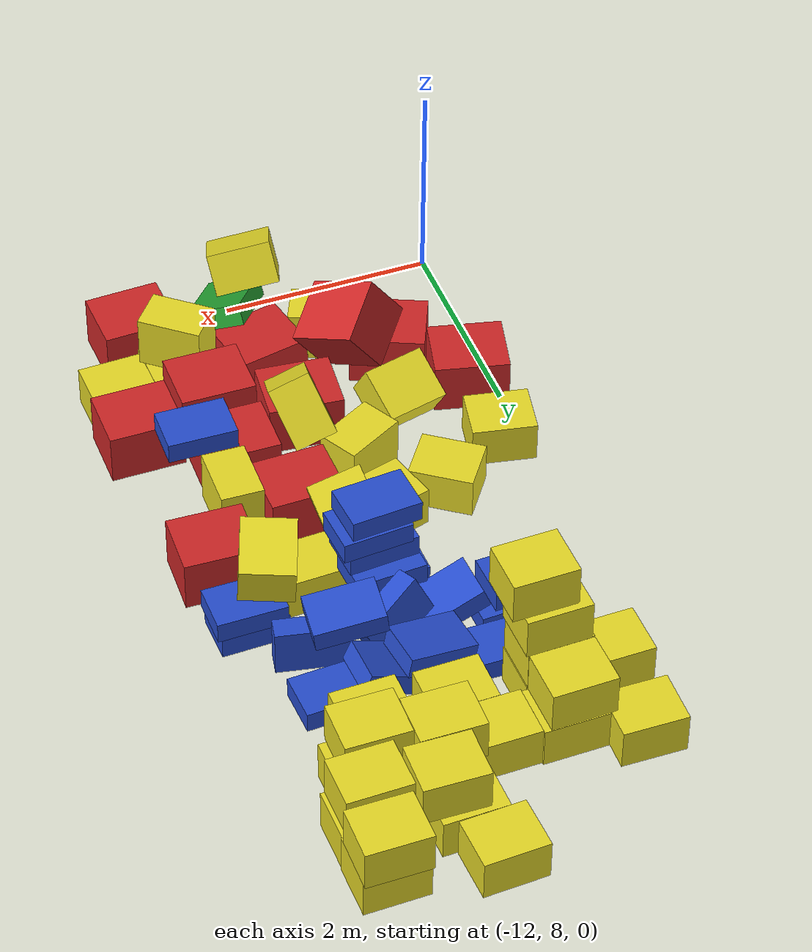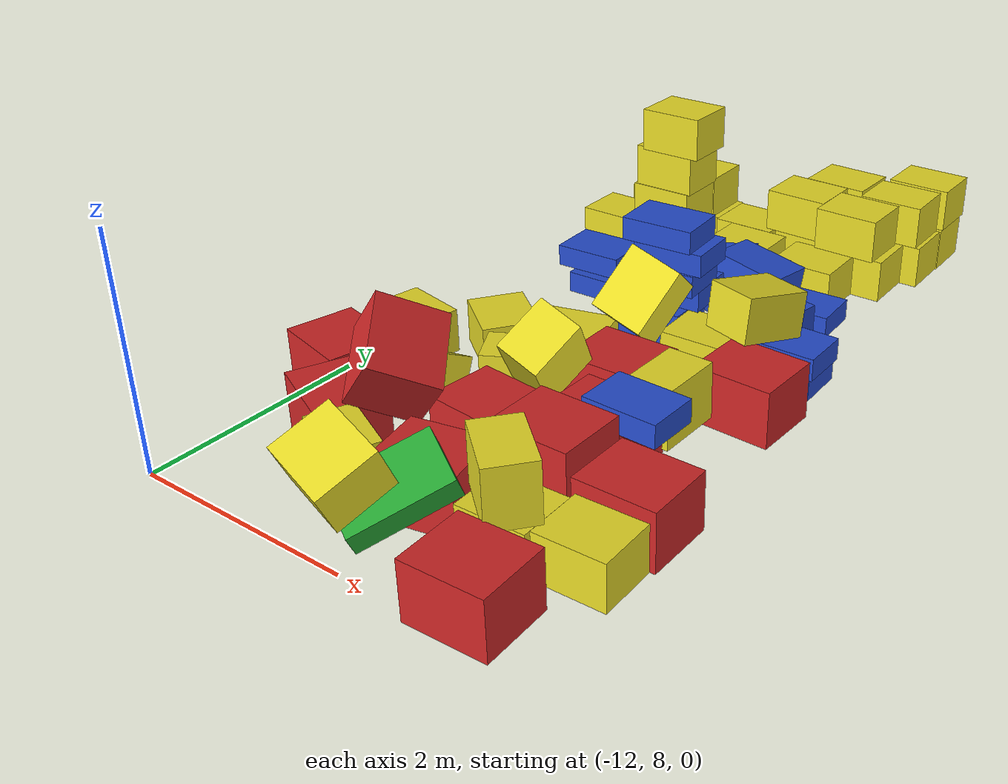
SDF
<sdf version="1.6">
 <world name="default">
  <model name="baggage_A_clone_20">
   <static>0</static>
   <link name="link">
    <collision name="collision"><geometry><box><size>0.7 0.6 0.5</size></box></geometry></collision>
    <visual name="visual">
     <geometry><box><size>0.7 0.6 0.5</size></box></geometry>
     <material>
      <script><uri>file://media/materials/scripts/gazebo.material</uri><name>Gazebo/Red</name></script>
     </material>
    </visual>
    <inertial>
     <inertia><ixx>1</ixx><ixy>0</ixy><ixz>0</ixz><iyy>1</iyy><iyz>0</iyz><izz>1</izz></inertia>
     <mass>1</mass>
    </inertial>
   </link>
   <pose>-8.9939 8.22465 0.249181 0.001268 6.1e-05 0.037154</pose>
  </model>
  <model name="baggage_A_clone_21">
   <static>0</static>
   <link name="link">
    <collision name="collision"><geometry><box><size>0.7 0.6 0.5</size></box></geometry></collision>
    <visual name="visual">
     <geometry><box><size>0.7 0.6 0.5</size></box></geometry>
     <material>
      <script><uri>file://media/materials/scripts/gazebo.material</uri><name>Gazebo/Red</name></script>
     </material>
    </visual>
    <inertial>
     <inertia><ixx>1</ixx><ixy>0</ixy><ixz>0</ixz><iyy>1</iyy><iyz>0</iyz><izz>1</izz></inertia>
     <mass>1</mass>
    </inertial>
   </link>
   <pose>-10.723 9.3807 0.785879 -2.65801 -0.434698 2.19369</pose>
  </model>
  <model name="baggage_A_clone_22">
   <static>0</static>
   <link name="link">
    <collision name="collision"><geometry><box><size>0.7 0.6 0.5</size></box></geometry></collision>
    <visual name="visual">
     <geometry><box><size>0.7 0.6 0.5</size></box></geometry>
     <material>
      <script><uri>file://media/materials/scripts/gazebo.material</uri><name>Gazebo/Red</name></script>
     </material>
    </visual>
    <inertial>
     <inertia><ixx>1</ixx><ixy>0</ixy><ixz>0</ixz><iyy>1</iyy><iyz>0</iyz><izz>1</izz></inertia>
     <mass>1</mass>
    </inertial>
   </link>
   <pose>-9.3741 10.0992 0.252939 0.002003 0.003724 -0.018318</pose>
  </model>
  <model name="baggage_A_clone_23">
   <static>0</static>
   <link name="link">
    <collision name="collision"><geometry><box><size>0.7 0.6 0.5</size></box></geometry></collision>
    <visual name="visual">
     <geometry><box><size>0.7 0.6 0.5</size></box></geometry>
     <material>
      <script><uri>file://media/materials/scripts/gazebo.material</uri><name>Gazebo/Red</name></script>
     </material>
    </visual>
    <inertial>
     <inertia><ixx>1</ixx><ixy>0</ixy><ixz>0</ixz><iyy>1</iyy><iyz>0</iyz><izz>1</izz></inertia>
     <mass>1</mass>
    </inertial>
   </link>
   <pose>-10.1281 9.7162 0.250001 4e-06 1e-06 -0.097675</pose>
  </model>
  <model name="baggage_A_clone_36">
   <static>0</static>
   <link name="link">
    <collision name="collision"><geometry><box><size>0.7 0.6 0.5</size></box></geometry></collision>
    <visual name="visual">
     <geometry><box><size>0.7 0.6 0.5</size></box></geometry>
     <material>
      <script><uri>file://media/materials/scripts/gazebo.material</uri><name>Gazebo/Red</name></script>
     </material>
    </visual>
    <inertial>
     <inertia><ixx>1</ixx><ixy>0</ixy><ixz>0</ixz><iyy>1</iyy><iyz>0</iyz><izz>1</izz></inertia>
     <mass>1</mass>
    </inertial>
   </link>
   <pose>-8.78308 11.2744 0.249697 -5e-05 -4.8e-05 -0.037055</pose>
  </model>
  <model name="baggage_A_clone_37">
   <static>0</static>
   <link name="link">
    <collision name="collision"><geometry><box><size>0.7 0.6 0.5</size></box></geometry></collision>
    <visual name="visual">
     <geometry><box><size>0.7 0.6 0.5</size></box></geometry>
     <material>
      <script><uri>file://media/materials/scripts/gazebo.material</uri><name>Gazebo/Red</name></script>
     </material>
    </visual>
    <inertial>
     <inertia><ixx>1</ixx><ixy>0</ixy><ixz>0</ixz><iyy>1</iyy><iyz>0</iyz><izz>1</izz></inertia>
     <mass>1</mass>
    </inertial>
   </link>
   <pose>-9.72185 10.831 0.251445 -0.00349 -0.001167 0.01839</pose>
  </model>
  <model name="baggage_A_clone_38">
   <static>0</static>
   <link name="link">
    <collision name="collision"><geometry><box><size>0.7 0.6 0.5</size></box></geometry></collision>
    <visual name="visual">
     <geometry><box><size>0.7 0.6 0.5</size></box></geometry>
     <material>
      <script><uri>file://media/materials/scripts/gazebo.material</uri><name>Gazebo/Red</name></script>
     </material>
    </visual>
    <inertial>
     <inertia><ixx>1</ixx><ixy>0</ixy><ixz>0</ixz><iyy>1</iyy><iyz>0</iyz><izz>1</izz></inertia>
     <mass>1</mass>
    </inertial>
   </link>
   <pose>-11.7703 9.75736 0.249999 1e-06 3e-06 -0.23456</pose>
  </model>
  <model name="baggage_B_clone_16">
   <static>0</static>
   <link name="link">
    <collision name="collision"><geometry><box><size>0.65 0.45 0.2</size></box></geometry></collision>
    <visual name="visual">
     <geometry><box><size>0.65 0.45 0.2</size></box></geometry>
     <material>
      <script><uri>file://media/materials/scripts/gazebo.material</uri><name>Gazebo/Blue</name></script>
     </material>
    </visual>
    <inertial>
     <inertia><ixx>1</ixx><ixy>0</ixy><ixz>0</ixz><iyy>1</iyy><iyz>0</iyz><izz>1</izz></inertia>
     <mass>1</mass>
    </inertial>
   </link>
   <pose>-9.25046 13.0399 0.099844 -1.5e-05 -1.7e-05 0.049353</pose>
  </model>
  <model name="baggage_B_clone_20">
   <static>0</static>
   <link name="link">
    <collision name="collision"><geometry><box><size>0.65 0.45 0.2</size></box></geometry></collision>
    <visual name="visual">
     <geometry><box><size>0.65 0.45 0.2</size></box></geometry>
     <material>
      <script><uri>file://media/materials/scripts/gazebo.material</uri><name>Gazebo/Blue</name></script>
     </material>
    </visual>
    <inertial>
     <inertia><ixx>1</ixx><ixy>0</ixy><ixz>0</ixz><iyy>1</iyy><iyz>0</iyz><izz>1</izz></inertia>
     <mass>1</mass>
    </inertial>
   </link>
   <pose>-9.7711 13.0268 0.222312 0.000105 -0.415489 0.049137</pose>
  </model>
  <model name="baggage_B_clone_21">
   <static>0</static>
   <link name="link">
    <collision name="collision"><geometry><box><size>0.65 0.45 0.2</size></box></geometry></collision>
    <visual name="visual">
     <geometry><box><size>0.65 0.45 0.2</size></box></geometry>
     <material>
      <script><uri>file://media/materials/scripts/gazebo.material</uri><name>Gazebo/Blue</name></script>
     </material>
    </visual>
    <inertial>
     <inertia><ixx>1</ixx><ixy>0</ixy><ixz>0</ixz><iyy>1</iyy><iyz>0</iyz><izz>1</izz></inertia>
     <mass>1</mass>
    </inertial>
   </link>
   <pose>-10.1528 13.0119 0.357664 1.5e-05 -0.185455 0.125951</pose>
  </model>
  <model name="baggage_B_clone_22">
   <static>0</static>
   <link name="link">
    <collision name="collision"><geometry><box><size>0.65 0.45 0.2</size></box></geometry></collision>
    <visual name="visual">
     <geometry><box><size>0.65 0.45 0.2</size></box></geometry>
     <material>
      <script><uri>file://media/materials/scripts/gazebo.material</uri><name>Gazebo/Blue</name></script>
     </material>
    </visual>
    <inertial>
     <inertia><ixx>1</ixx><ixy>0</ixy><ixz>0</ixz><iyy>1</iyy><iyz>0</iyz><izz>1</izz></inertia>
     <mass>1</mass>
    </inertial>
   </link>
   <pose>-10.6127 13.0352 0.099462 6e-06 6.4e-05 -0.003617</pose>
  </model>
  <model name="baggage_B_clone_23">
   <static>0</static>
   <link name="link">
    <collision name="collision"><geometry><box><size>0.65 0.45 0.2</size></box></geometry></collision>
    <visual name="visual">
     <geometry><box><size>0.65 0.45 0.2</size></box></geometry>
     <material>
      <script><uri>file://media/materials/scripts/gazebo.material</uri><name>Gazebo/Blue</name></script>
     </material>
    </visual>
    <inertial>
     <inertia><ixx>1</ixx><ixy>0</ixy><ixz>0</ixz><iyy>1</iyy><iyz>0</iyz><izz>1</izz></inertia>
     <mass>1</mass>
    </inertial>
   </link>
   <pose>-11.0485 12.5211 0.090977 -0.000836 0.000896 0.039463</pose>
  </model>
  <model name="baggage_B_clone_24">
   <static>0</static>
   <link name="link">
    <collision name="collision"><geometry><box><size>0.65 0.45 0.2</size></box></geometry></collision>
    <visual name="visual">
     <geometry><box><size>0.65 0.45 0.2</size></box></geometry>
     <material>
      <script><uri>file://media/materials/scripts/gazebo.material</uri><name>Gazebo/Blue</name></script>
     </material>
    </visual>
    <inertial>
     <inertia><ixx>1</ixx><ixy>0</ixy><ixz>0</ixz><iyy>1</iyy><iyz>0</iyz><izz>1</izz></inertia>
     <mass>1</mass>
    </inertial>
   </link>
   <pose>-11.168 12.5166 0.346873 0.005702 -0.01162 0.041514</pose>
  </model>
  <model name="baggage_B_clone_25">
   <static>0</static>
   <link name="link">
    <collision name="collision"><geometry><box><size>0.65 0.45 0.2</size></box></geometry></collision>
    <visual name="visual">
     <geometry><box><size>0.65 0.45 0.2</size></box></geometry>
     <material>
      <script><uri>file://media/materials/scripts/gazebo.material</uri><name>Gazebo/Blue</name></script>
     </material>
    </visual>
    <inertial>
     <inertia><ixx>1</ixx><ixy>0</ixy><ixz>0</ixz><iyy>1</iyy><iyz>0</iyz><izz>1</izz></inertia>
     <mass>1</mass>
    </inertial>
   </link>
   <pose>-10.5022 12.4446 0.212184 -7e-06 0.377408 0.049596</pose>
  </model>
  <model name="baggage_B_clone_26">
   <static>0</static>
   <link name="link">
    <collision name="collision"><geometry><box><size>0.65 0.45 0.2</size></box></geometry></collision>
    <visual name="visual">
     <geometry><box><size>0.65 0.45 0.2</size></box></geometry>
     <material>
      <script><uri>file://media/materials/scripts/gazebo.material</uri><name>Gazebo/Blue</name></script>
     </material>
    </visual>
    <inertial>
     <inertia><ixx>1</ixx><ixy>0</ixy><ixz>0</ixz><iyy>1</iyy><iyz>0</iyz><izz>1</izz></inertia>
     <mass>1</mass>
    </inertial>
   </link>
   <pose>-10.1221 11.9904 0.099999 -2e-06 -3e-06 0.022156</pose>
  </model>
  <model name="baggage_B_clone_27">
   <static>0</static>
   <link name="link">
    <collision name="collision"><geometry><box><size>0.65 0.45 0.2</size></box></geometry></collision>
    <visual name="visual">
     <geometry><box><size>0.65 0.45 0.2</size></box></geometry>
     <material>
      <script><uri>file://media/materials/scripts/gazebo.material</uri><name>Gazebo/Blue</name></script>
     </material>
    </visual>
    <inertial>
     <inertia><ixx>1</ixx><ixy>0</ixy><ixz>0</ixz><iyy>1</iyy><iyz>0</iyz><izz>1</izz></inertia>
     <mass>1</mass>
    </inertial>
   </link>
   <pose>-10.0434 11.9814 1.10029 -0.000132 -0.000214 0.077197</pose>
  </model>
  <model name="baggage_B_clone_28">
   <static>0</static>
   <link name="link">
    <collision name="collision"><geometry><box><size>0.65 0.45 0.2</size></box></geometry></collision>
    <visual name="visual">
     <geometry><box><size>0.65 0.45 0.2</size></box></geometry>
     <material>
      <script><uri>file://media/materials/scripts/gazebo.material</uri><name>Gazebo/Blue</name></script>
     </material>
    </visual>
    <inertial>
     <inertia><ixx>1</ixx><ixy>0</ixy><ixz>0</ixz><iyy>1</iyy><iyz>0</iyz><izz>1</izz></inertia>
     <mass>1</mass>
    </inertial>
   </link>
   <pose>-10.126 11.9814 0.299998 -5e-06 -1e-06 0.023405</pose>
  </model>
  <model name="baggage_B_clone_29">
   <static>0</static>
   <link name="link">
    <collision name="collision"><geometry><box><size>0.65 0.45 0.2</size></box></geometry></collision>
    <visual name="visual">
     <geometry><box><size>0.65 0.45 0.2</size></box></geometry>
     <material>
      <script><uri>file://media/materials/scripts/gazebo.material</uri><name>Gazebo/Blue</name></script>
     </material>
    </visual>
    <inertial>
     <inertia><ixx>1</ixx><ixy>0</ixy><ixz>0</ixz><iyy>1</iyy><iyz>0</iyz><izz>1</izz></inertia>
     <mass>1</mass>
    </inertial>
   </link>
   <pose>-10.035 12.1381 0.500093 -0.000235 -0.000744 0.058856</pose>
  </model>
  <model name="baggage_B_clone_30">
   <static>0</static>
   <link name="link">
    <collision name="collision"><geometry><box><size>0.65 0.45 0.2</size></box></geometry></collision>
    <visual name="visual">
     <geometry><box><size>0.65 0.45 0.2</size></box></geometry>
     <material>
      <script><uri>file://media/materials/scripts/gazebo.material</uri><name>Gazebo/Blue</name></script>
     </material>
    </visual>
    <inertial>
     <inertia><ixx>1</ixx><ixy>0</ixy><ixz>0</ixz><iyy>1</iyy><iyz>0</iyz><izz>1</izz></inertia>
     <mass>1</mass>
    </inertial>
   </link>
   <pose>-10.0145 11.9869 0.700123 -0.000157 -0.00074 0.074672</pose>
  </model>
  <model name="baggage_B_clone_31">
   <static>0</static>
   <link name="link">
    <collision name="collision"><geometry><box><size>0.65 0.45 0.2</size></box></geometry></collision>
    <visual name="visual">
     <geometry><box><size>0.65 0.45 0.2</size></box></geometry>
     <material>
      <script><uri>file://media/materials/scripts/gazebo.material</uri><name>Gazebo/Blue</name></script>
     </material>
    </visual>
    <inertial>
     <inertia><ixx>1</ixx><ixy>0</ixy><ixz>0</ixz><iyy>1</iyy><iyz>0</iyz><izz>1</izz></inertia>
     <mass>1</mass>
    </inertial>
   </link>
   <pose>-9.95195 12.0157 0.900299 -0.000156 -0.000286 0.072007</pose>
  </model>
  <model name="baggage_B_clone_32">
   <static>0</static>
   <link name="link">
    <collision name="collision"><geometry><box><size>0.65 0.45 0.2</size></box></geometry></collision>
    <visual name="visual">
     <geometry><box><size>0.65 0.45 0.2</size></box></geometry>
     <material>
      <script><uri>file://media/materials/scripts/gazebo.material</uri><name>Gazebo/Blue</name></script>
     </material>
    </visual>
    <inertial>
     <inertia><ixx>1</ixx><ixy>0</ixy><ixz>0</ixz><iyy>1</iyy><iyz>0</iyz><izz>1</izz></inertia>
     <mass>1</mass>
    </inertial>
   </link>
   <pose>-9.40368 9.47511 0.100606 0.000927 0.000705 -0.377011</pose>
  </model>
  <model name="baggage_B_clone_33">
   <static>0</static>
   <link name="link">
    <collision name="collision"><geometry><box><size>0.65 0.45 0.2</size></box></geometry></collision>
    <visual name="visual">
     <geometry><box><size>0.65 0.45 0.2</size></box></geometry>
     <material>
      <script><uri>file://media/materials/scripts/gazebo.material</uri><name>Gazebo/Blue</name></script>
     </material>
    </visual>
    <inertial>
     <inertia><ixx>1</ixx><ixy>0</ixy><ixz>0</ixz><iyy>1</iyy><iyz>0</iyz><izz>1</izz></inertia>
     <mass>1</mass>
    </inertial>
   </link>
   <pose>-9.96611 12.5784 0.342142 1.72866 0.383061 0.45533</pose>
  </model>
  <model name="baggage_B_clone_34">
   <static>0</static>
   <link name="link">
    <collision name="collision"><geometry><box><size>0.65 0.45 0.2</size></box></geometry></collision>
    <visual name="visual">
     <geometry><box><size>0.65 0.45 0.2</size></box></geometry>
     <material>
      <script><uri>file://media/materials/scripts/gazebo.material</uri><name>Gazebo/Blue</name></script>
     </material>
    </visual>
    <inertial>
     <inertia><ixx>1</ixx><ixy>0</ixy><ixz>0</ixz><iyy>1</iyy><iyz>0</iyz><izz>1</izz></inertia>
     <mass>1</mass>
    </inertial>
   </link>
   <pose>-9.51392 12.6318 0.59185 -0.067016 0.127095 -0.108396</pose>
  </model>
  <model name="baggage_B_clone_35">
   <static>0</static>
   <link name="link">
    <collision name="collision"><geometry><box><size>0.65 0.45 0.2</size></box></geometry></collision>
    <visual name="visual">
     <geometry><box><size>0.65 0.45 0.2</size></box></geometry>
     <material>
      <script><uri>file://media/materials/scripts/gazebo.material</uri><name>Gazebo/Blue</name></script>
     </material>
    </visual>
    <inertial>
     <inertia><ixx>1</ixx><ixy>0</ixy><ixz>0</ixz><iyy>1</iyy><iyz>0</iyz><izz>1</izz></inertia>
     <mass>1</mass>
    </inertial>
   </link>
   <pose>-9.24122 12.5226 0.224977 1.5708 -1e-06 -0.199324</pose>
  </model>
  <model name="baggage_B_clone_41">
   <static>0</static>
   <link name="link">
    <collision name="collision"><geometry><box><size>0.65 0.45 0.2</size></box></geometry></collision>
    <visual name="visual">
     <geometry><box><size>0.65 0.45 0.2</size></box></geometry>
     <material>
      <script><uri>file://media/materials/scripts/gazebo.material</uri><name>Gazebo/Blue</name></script>
     </material>
    </visual>
    <inertial>
     <inertia><ixx>1</ixx><ixy>0</ixy><ixz>0</ixz><iyy>1</iyy><iyz>0</iyz><izz>1</izz></inertia>
     <mass>1</mass>
    </inertial>
   </link>
   <pose>-8.85566 11.9961 0.1 0 -0 0.023504</pose>
  </model>
  <model name="baggage_B_clone_42">
   <static>0</static>
   <link name="link">
    <collision name="collision"><geometry><box><size>0.65 0.45 0.2</size></box></geometry></collision>
    <visual name="visual">
     <geometry><box><size>0.65 0.45 0.2</size></box></geometry>
     <material>
      <script><uri>file://media/materials/scripts/gazebo.material</uri><name>Gazebo/Blue</name></script>
     </material>
    </visual>
    <inertial>
     <inertia><ixx>1</ixx><ixy>0</ixy><ixz>0</ixz><iyy>1</iyy><iyz>0</iyz><izz>1</izz></inertia>
     <mass>1</mass>
    </inertial>
   </link>
   <pose>-8.82535 11.9975 0.299588 -2e-05 -0.000456 0.003886</pose>
  </model>
  <model name="baggage_B_clone_44">
   <static>0</static>
   <link name="link">
    <collision name="collision"><geometry><box><size>0.65 0.45 0.2</size></box></geometry></collision>
    <visual name="visual">
     <geometry><box><size>0.65 0.45 0.2</size></box></geometry>
     <material>
      <script><uri>file://media/materials/scripts/gazebo.material</uri><name>Gazebo/Blue</name></script>
     </material>
    </visual>
    <inertial>
     <inertia><ixx>1</ixx><ixy>0</ixy><ixz>0</ixz><iyy>1</iyy><iyz>0</iyz><izz>1</izz></inertia>
     <mass>1</mass>
    </inertial>
   </link>
   <pose>-9.03203 10.0629 0.602401 0.001383 0.001693 -0.023795</pose>
  </model>
  <model name="baggage_A_clone_43">
   <static>0</static>
   <link name="link">
    <collision name="collision"><geometry><box><size>0.7 0.6 0.5</size></box></geometry></collision>
    <visual name="visual">
     <geometry><box><size>0.7 0.6 0.5</size></box></geometry>
     <material>
      <script><uri>file://media/materials/scripts/gazebo.material</uri><name>Gazebo/Red</name></script>
     </material>
    </visual>
    <inertial>
     <inertia><ixx>1</ixx><ixy>0</ixy><ixz>0</ixz><iyy>1</iyy><iyz>0</iyz><izz>1</izz></inertia>
     <mass>1</mass>
    </inertial>
   </link>
   <pose>-8.64007 9.52962 0.250004 0.000114 -5.9e-05 0.001173</pose>
  </model>
  <model name="baggage_A_clone_44">
   <static>0</static>
   <link name="link">
    <collision name="collision"><geometry><box><size>0.7 0.6 0.5</size></box></geometry></collision>
    <visual name="visual">
     <geometry><box><size>0.7 0.6 0.5</size></box></geometry>
     <material>
      <script><uri>file://media/materials/scripts/gazebo.material</uri><name>Gazebo/Red</name></script>
     </material>
    </visual>
    <inertial>
     <inertia><ixx>1</ixx><ixy>0</ixy><ixz>0</ixz><iyy>1</iyy><iyz>0</iyz><izz>1</izz></inertia>
     <mass>1</mass>
    </inertial>
   </link>
   <pose>-9.3438 9.49567 0.451551 -0.000504 -0.001005 -0.010672</pose>
  </model>
  <model name="baggage_A_clone_45">
   <static>0</static>
   <link name="link">
    <collision name="collision"><geometry><box><size>0.7 0.6 0.5</size></box></geometry></collision>
    <visual name="visual">
     <geometry><box><size>0.7 0.6 0.5</size></box></geometry>
     <material>
      <script><uri>file://media/materials/scripts/gazebo.material</uri><name>Gazebo/Red</name></script>
     </material>
    </visual>
    <inertial>
     <inertia><ixx>1</ixx><ixy>0</ixy><ixz>0</ixz><iyy>1</iyy><iyz>0</iyz><izz>1</izz></inertia>
     <mass>1</mass>
    </inertial>
   </link>
   <pose>-11.2031 9.18107 0.24996 -5e-06 5e-06 -0.421757</pose>
  </model>
  <model name="baggage_C_clone_17">
   <static>0</static>
   <link name="link">
    <collision name="collision"><geometry><box><size>0.6 0.5 0.4</size></box></geometry></collision>
    <visual name="visual">
     <geometry><box><size>0.6 0.5 0.4</size></box></geometry>
     <material>
      <script><uri>file://media/materials/scripts/gazebo.material</uri><name>Gazebo/Yellow</name></script>
     </material>
    </visual>
    <inertial>
     <inertia><ixx>1</ixx><ixy>0</ixy><ixz>0</ixz><iyy>1</iyy><iyz>0</iyz><izz>1</izz></inertia>
     <mass>1</mass>
    </inertial>
   </link>
   <pose>-9.03858 14.5232 0.600195 -4.7e-05 -4e-06 0.014866</pose>
  </model>
  <model name="baggage_C_clone_18">
   <static>0</static>
   <link name="link">
    <collision name="collision"><geometry><box><size>0.6 0.5 0.4</size></box></geometry></collision>
    <visual name="visual">
     <geometry><box><size>0.6 0.5 0.4</size></box></geometry>
     <material>
      <script><uri>file://media/materials/scripts/gazebo.material</uri><name>Gazebo/Yellow</name></script>
     </material>
    </visual>
    <inertial>
     <inertia><ixx>1</ixx><ixy>0</ixy><ixz>0</ixz><iyy>1</iyy><iyz>0</iyz><izz>1</izz></inertia>
     <mass>1</mass>
    </inertial>
   </link>
   <pose>-8.9966 15.0812 0.6 0 -0 0.000513</pose>
  </model>
  <model name="baggage_C_clone_19">
   <static>0</static>
   <link name="link">
    <collision name="collision"><geometry><box><size>0.6 0.5 0.4</size></box></geometry></collision>
    <visual name="visual">
     <geometry><box><size>0.6 0.5 0.4</size></box></geometry>
     <material>
      <script><uri>file://media/materials/scripts/gazebo.material</uri><name>Gazebo/Yellow</name></script>
     </material>
    </visual>
    <inertial>
     <inertia><ixx>1</ixx><ixy>0</ixy><ixz>0</ixz><iyy>1</iyy><iyz>0</iyz><izz>1</izz></inertia>
     <mass>1</mass>
    </inertial>
   </link>
   <pose>-8.9998 14.5254 0.199974 -3.7e-05 -0 0.016113</pose>
  </model>
  <model name="baggage_C_clone_21">
   <static>0</static>
   <link name="link">
    <collision name="collision"><geometry><box><size>0.6 0.5 0.4</size></box></geometry></collision>
    <visual name="visual">
     <geometry><box><size>0.6 0.5 0.4</size></box></geometry>
     <material>
      <script><uri>file://media/materials/scripts/gazebo.material</uri><name>Gazebo/Yellow</name></script>
     </material>
    </visual>
    <inertial>
     <inertia><ixx>1</ixx><ixy>0</ixy><ixz>0</ixz><iyy>1</iyy><iyz>0</iyz><izz>1</izz></inertia>
     <mass>1</mass>
    </inertial>
   </link>
   <pose>-9.43084 13.5183 0.199918 -7.6e-05 1.7e-05 0.016396</pose>
  </model>
  <model name="baggage_C_clone_22">
   <static>0</static>
   <link name="link">
    <collision name="collision"><geometry><box><size>0.6 0.5 0.4</size></box></geometry></collision>
    <visual name="visual">
     <geometry><box><size>0.6 0.5 0.4</size></box></geometry>
     <material>
      <script><uri>file://media/materials/scripts/gazebo.material</uri><name>Gazebo/Yellow</name></script>
     </material>
    </visual>
    <inertial>
     <inertia><ixx>1</ixx><ixy>0</ixy><ixz>0</ixz><iyy>1</iyy><iyz>0</iyz><izz>1</izz></inertia>
     <mass>1</mass>
    </inertial>
   </link>
   <pose>-10.1736 13.5433 0.199999 2e-06 -1e-06 0.010649</pose>
  </model>
  <model name="baggage_C_clone_23">
   <static>0</static>
   <link name="link">
    <collision name="collision"><geometry><box><size>0.6 0.5 0.4</size></box></geometry></collision>
    <visual name="visual">
     <geometry><box><size>0.6 0.5 0.4</size></box></geometry>
     <material>
      <script><uri>file://media/materials/scripts/gazebo.material</uri><name>Gazebo/Yellow</name></script>
     </material>
    </visual>
    <inertial>
     <inertia><ixx>1</ixx><ixy>0</ixy><ixz>0</ixz><iyy>1</iyy><iyz>0</iyz><izz>1</izz></inertia>
     <mass>1</mass>
    </inertial>
   </link>
   <pose>-10.1174 8.16935 0.731183 0.426242 0.201924 -0.221704</pose>
  </model>
  <model name="baggage_C_clone_24">
   <static>0</static>
   <link name="link">
    <collision name="collision"><geometry><box><size>0.6 0.5 0.4</size></box></geometry></collision>
    <visual name="visual">
     <geometry><box><size>0.6 0.5 0.4</size></box></geometry>
     <material>
      <script><uri>file://media/materials/scripts/gazebo.material</uri><name>Gazebo/Yellow</name></script>
     </material>
    </visual>
    <inertial>
     <inertia><ixx>1</ixx><ixy>0</ixy><ixz>0</ixz><iyy>1</iyy><iyz>0</iyz><izz>1</izz></inertia>
     <mass>1</mass>
    </inertial>
   </link>
   <pose>-9.48099 11.7276 0.198462 3.14132 0.000154 0.03837</pose>
  </model>
  <model name="baggage_C_clone_25">
   <static>0</static>
   <link name="link">
    <collision name="collision"><geometry><box><size>0.6 0.5 0.4</size></box></geometry></collision>
    <visual name="visual">
     <geometry><box><size>0.6 0.5 0.4</size></box></geometry>
     <material>
      <script><uri>file://media/materials/scripts/gazebo.material</uri><name>Gazebo/Yellow</name></script>
     </material>
    </visual>
    <inertial>
     <inertia><ixx>1</ixx><ixy>0</ixy><ixz>0</ixz><iyy>1</iyy><iyz>0</iyz><izz>1</izz></inertia>
     <mass>1</mass>
    </inertial>
   </link>
   <pose>-9.16262 10.6843 0.343191 1.55956 -0.001796 1.55046</pose>
  </model>
  <model name="baggage_C_clone_26">
   <static>0</static>
   <link name="link">
    <collision name="collision"><geometry><box><size>0.6 0.5 0.4</size></box></geometry></collision>
    <visual name="visual">
     <geometry><box><size>0.6 0.5 0.4</size></box></geometry>
     <material>
      <script><uri>file://media/materials/scripts/gazebo.material</uri><name>Gazebo/Yellow</name></script>
     </material>
    </visual>
    <inertial>
     <inertia><ixx>1</ixx><ixy>0</ixy><ixz>0</ixz><iyy>1</iyy><iyz>0</iyz><izz>1</izz></inertia>
     <mass>1</mass>
    </inertial>
   </link>
   <pose>-9.66964 14.6267 0.599978 -7.9e-05 7e-06 -0.020996</pose>
  </model>
  <model name="baggage_C_clone_27">
   <static>0</static>
   <link name="link">
    <collision name="collision"><geometry><box><size>0.6 0.5 0.4</size></box></geometry></collision>
    <visual name="visual">
     <geometry><box><size>0.6 0.5 0.4</size></box></geometry>
     <material>
      <script><uri>file://media/materials/scripts/gazebo.material</uri><name>Gazebo/Yellow</name></script>
     </material>
    </visual>
    <inertial>
     <inertia><ixx>1</ixx><ixy>0</ixy><ixz>0</ixz><iyy>1</iyy><iyz>0</iyz><izz>1</izz></inertia>
     <mass>1</mass>
    </inertial>
   </link>
   <pose>-9.95902 15.1866 0.199989 1e-06 2e-06 0.048</pose>
  </model>
  <model name="baggage_C_clone_28">
   <static>0</static>
   <link name="link">
    <collision name="collision"><geometry><box><size>0.6 0.5 0.4</size></box></geometry></collision>
    <visual name="visual">
     <geometry><box><size>0.6 0.5 0.4</size></box></geometry>
     <material>
      <script><uri>file://media/materials/scripts/gazebo.material</uri><name>Gazebo/Yellow</name></script>
     </material>
    </visual>
    <inertial>
     <inertia><ixx>1</ixx><ixy>0</ixy><ixz>0</ixz><iyy>1</iyy><iyz>0</iyz><izz>1</izz></inertia>
     <mass>1</mass>
    </inertial>
   </link>
   <pose>-9.81004 14.6862 0.199961 -2e-06 0 0.024409</pose>
  </model>
  <model name="baggage_C_clone_29">
   <static>0</static>
   <link name="link">
    <collision name="collision"><geometry><box><size>0.6 0.5 0.4</size></box></geometry></collision>
    <visual name="visual">
     <geometry><box><size>0.6 0.5 0.4</size></box></geometry>
     <material>
      <script><uri>file://media/materials/scripts/gazebo.material</uri><name>Gazebo/Yellow</name></script>
     </material>
    </visual>
    <inertial>
     <inertia><ixx>1</ixx><ixy>0</ixy><ixz>0</ixz><iyy>1</iyy><iyz>0</iyz><izz>1</izz></inertia>
     <mass>1</mass>
    </inertial>
   </link>
   <pose>-9.22994 13.9846 0.600215 -3.6e-05 -4e-06 -0.004673</pose>
  </model>
  <model name="baggage_C_clone_30">
   <static>0</static>
   <link name="link">
    <collision name="collision"><geometry><box><size>0.6 0.5 0.4</size></box></geometry></collision>
    <visual name="visual">
     <geometry><box><size>0.6 0.5 0.4</size></box></geometry>
     <material>
      <script><uri>file://media/materials/scripts/gazebo.material</uri><name>Gazebo/Yellow</name></script>
     </material>
    </visual>
    <inertial>
     <inertia><ixx>1</ixx><ixy>0</ixy><ixz>0</ixz><iyy>1</iyy><iyz>0</iyz><izz>1</izz></inertia>
     <mass>1</mass>
    </inertial>
   </link>
   <pose>-9.15874 14.0226 0.200218 -4e-05 -4e-06 0.014657</pose>
  </model>
  <model name="baggage_C_clone_31">
   <static>0</static>
   <link name="link">
    <collision name="collision"><geometry><box><size>0.6 0.5 0.4</size></box></geometry></collision>
    <visual name="visual">
     <geometry><box><size>0.6 0.5 0.4</size></box></geometry>
     <material>
      <script><uri>file://media/materials/scripts/gazebo.material</uri><name>Gazebo/Yellow</name></script>
     </material>
    </visual>
    <inertial>
     <inertia><ixx>1</ixx><ixy>0</ixy><ixz>0</ixz><iyy>1</iyy><iyz>0</iyz><izz>1</izz></inertia>
     <mass>1</mass>
    </inertial>
   </link>
   <pose>-10.3593 14.0434 0.199953 1e-06 2e-06 0.01412</pose>
  </model>
  <model name="baggage_C_clone_32">
   <static>0</static>
   <link name="link">
    <collision name="collision"><geometry><box><size>0.6 0.5 0.4</size></box></geometry></collision>
    <visual name="visual">
     <geometry><box><size>0.6 0.5 0.4</size></box></geometry>
     <material>
      <script><uri>file://media/materials/scripts/gazebo.material</uri><name>Gazebo/Yellow</name></script>
     </material>
    </visual>
    <inertial>
     <inertia><ixx>1</ixx><ixy>0</ixy><ixz>0</ixz><iyy>1</iyy><iyz>0</iyz><izz>1</izz></inertia>
     <mass>1</mass>
    </inertial>
   </link>
   <pose>-9.83331 14.1227 0.599989 -3e-06 3e-06 -0.010411</pose>
  </model>
  <model name="baggage_C_clone_33">
   <static>0</static>
   <link name="link">
    <collision name="collision"><geometry><box><size>0.6 0.5 0.4</size></box></geometry></collision>
    <visual name="visual">
     <geometry><box><size>0.6 0.5 0.4</size></box></geometry>
     <material>
      <script><uri>file://media/materials/scripts/gazebo.material</uri><name>Gazebo/Yellow</name></script>
     </material>
    </visual>
    <inertial>
     <inertia><ixx>1</ixx><ixy>0</ixy><ixz>0</ixz><iyy>1</iyy><iyz>0</iyz><izz>1</izz></inertia>
     <mass>1</mass>
    </inertial>
   </link>
   <pose>-9.76122 14.1841 0.199981 1e-06 6e-06 0.014092</pose>
  </model>
  <model name="baggage_C_clone_34">
   <static>0</static>
   <link name="link">
    <collision name="collision"><geometry><box><size>0.6 0.5 0.4</size></box></geometry></collision>
    <visual name="visual">
     <geometry><box><size>0.6 0.5 0.4</size></box></geometry>
     <material>
      <script><uri>file://media/materials/scripts/gazebo.material</uri><name>Gazebo/Yellow</name></script>
     </material>
    </visual>
    <inertial>
     <inertia><ixx>1</ixx><ixy>0</ixy><ixz>0</ixz><iyy>1</iyy><iyz>0</iyz><izz>1</izz></inertia>
     <mass>1</mass>
    </inertial>
   </link>
   <pose>-8.9985 15.025 0.2 0 -0 0.016294</pose>
  </model>
  <model name="baggage_C_clone_35">
   <static>0</static>
   <link name="link">
    <collision name="collision"><geometry><box><size>0.6 0.5 0.4</size></box></geometry></collision>
    <visual name="visual">
     <geometry><box><size>0.6 0.5 0.4</size></box></geometry>
     <material>
      <script><uri>file://media/materials/scripts/gazebo.material</uri><name>Gazebo/Yellow</name></script>
     </material>
    </visual>
    <inertial>
     <inertia><ixx>1</ixx><ixy>0</ixy><ixz>0</ixz><iyy>1</iyy><iyz>0</iyz><izz>1</izz></inertia>
     <mass>1</mass>
    </inertial>
   </link>
   <pose>-11.0207 14.0461 0.599991 0 -0 0.022504</pose>
  </model>
  <model name="baggage_C_clone_36">
   <static>0</static>
   <link name="link">
    <collision name="collision"><geometry><box><size>0.6 0.5 0.4</size></box></geometry></collision>
    <visual name="visual">
     <geometry><box><size>0.6 0.5 0.4</size></box></geometry>
     <material>
      <script><uri>file://media/materials/scripts/gazebo.material</uri><name>Gazebo/Yellow</name></script>
     </material>
    </visual>
    <inertial>
     <inertia><ixx>1</ixx><ixy>0</ixy><ixz>0</ixz><iyy>1</iyy><iyz>0</iyz><izz>1</izz></inertia>
     <mass>1</mass>
    </inertial>
   </link>
   <pose>-10.6873 8.75142 0.250232 1.5713 -0.000803 -0.432523</pose>
  </model>
  <model name="baggage_C_clone_38">
   <static>0</static>
   <link name="link">
    <collision name="collision"><geometry><box><size>0.6 0.5 0.4</size></box></geometry></collision>
    <visual name="visual">
     <geometry><box><size>0.6 0.5 0.4</size></box></geometry>
     <material>
      <script><uri>file://media/materials/scripts/gazebo.material</uri><name>Gazebo/Yellow</name></script>
     </material>
    </visual>
    <inertial>
     <inertia><ixx>1</ixx><ixy>0</ixy><ixz>0</ixz><iyy>1</iyy><iyz>0</iyz><izz>1</izz></inertia>
     <mass>1</mass>
    </inertial>
   </link>
   <pose>-10.9597 14.0575 0.199999 2e-06 2e-06 0.014452</pose>
  </model>
  <model name="baggage_C_clone_39">
   <static>0</static>
   <link name="link">
    <collision name="collision"><geometry><box><size>0.6 0.5 0.4</size></box></geometry></collision>
    <visual name="visual">
     <geometry><box><size>0.6 0.5 0.4</size></box></geometry>
     <material>
      <script><uri>file://media/materials/scripts/gazebo.material</uri><name>Gazebo/Yellow</name></script>
     </material>
    </visual>
    <inertial>
     <inertia><ixx>1</ixx><ixy>0</ixy><ixz>0</ixz><iyy>1</iyy><iyz>0</iyz><izz>1</izz></inertia>
     <mass>1</mass>
    </inertial>
   </link>
   <pose>-11.5701 14.3119 0.199942 0 2e-06 -0.015558</pose>
  </model>
  <model name="baggage_C_clone_40">
   <static>0</static>
   <link name="link">
    <collision name="collision"><geometry><box><size>0.6 0.5 0.4</size></box></geometry></collision>
    <visual name="visual">
     <geometry><box><size>0.6 0.5 0.4</size></box></geometry>
     <material>
      <script><uri>file://media/materials/scripts/gazebo.material</uri><name>Gazebo/Yellow</name></script>
     </material>
    </visual>
    <inertial>
     <inertia><ixx>1</ixx><ixy>0</ixy><ixz>0</ixz><iyy>1</iyy><iyz>0</iyz><izz>1</izz></inertia>
     <mass>1</mass>
    </inertial>
   </link>
   <pose>-11.0868 10.9895 0.19987 3.14147 0.000213 2.51598</pose>
  </model>
  <model name="baggage_C_clone_41">
   <static>0</static>
   <link name="link">
    <collision name="collision"><geometry><box><size>0.6 0.5 0.4</size></box></geometry></collision>
    <visual name="visual">
     <geometry><box><size>0.6 0.5 0.4</size></box></geometry>
     <material>
      <script><uri>file://media/materials/scripts/gazebo.material</uri><name>Gazebo/Yellow</name></script>
     </material>
    </visual>
    <inertial>
     <inertia><ixx>1</ixx><ixy>0</ixy><ixz>0</ixz><iyy>1</iyy><iyz>0</iyz><izz>1</izz></inertia>
     <mass>1</mass>
    </inertial>
   </link>
   <pose>-10.8773 13.4796 1.39505 0.000287 0.000448 0.020601</pose>
  </model>
  <model name="baggage_C_clone_42">
   <static>0</static>
   <link name="link">
    <collision name="collision"><geometry><box><size>0.6 0.5 0.4</size></box></geometry></collision>
    <visual name="visual">
     <geometry><box><size>0.6 0.5 0.4</size></box></geometry>
     <material>
      <script><uri>file://media/materials/scripts/gazebo.material</uri><name>Gazebo/Yellow</name></script>
     </material>
    </visual>
    <inertial>
     <inertia><ixx>1</ixx><ixy>0</ixy><ixz>0</ixz><iyy>1</iyy><iyz>0</iyz><izz>1</izz></inertia>
     <mass>1</mass>
    </inertial>
   </link>
   <pose>-11.6147 13.5048 0.200001 0 -2e-06 0.015349</pose>
  </model>
  <model name="baggage_C_clone_43">
   <static>0</static>
   <link name="link">
    <collision name="collision"><geometry><box><size>0.6 0.5 0.4</size></box></geometry></collision>
    <visual name="visual">
     <geometry><box><size>0.6 0.5 0.4</size></box></geometry>
     <material>
      <script><uri>file://media/materials/scripts/gazebo.material</uri><name>Gazebo/Yellow</name></script>
     </material>
    </visual>
    <inertial>
     <inertia><ixx>1</ixx><ixy>0</ixy><ixz>0</ixz><iyy>1</iyy><iyz>0</iyz><izz>1</izz></inertia>
     <mass>1</mass>
    </inertial>
   </link>
   <pose>-10.9876 13.5421 0.995151 0.000287 0.000446 0.022844</pose>
  </model>
  <model name="baggage_C_clone_44">
   <static>0</static>
   <link name="link">
    <collision name="collision"><geometry><box><size>0.6 0.5 0.4</size></box></geometry></collision>
    <visual name="visual">
     <geometry><box><size>0.6 0.5 0.4</size></box></geometry>
     <material>
      <script><uri>file://media/materials/scripts/gazebo.material</uri><name>Gazebo/Yellow</name></script>
     </material>
    </visual>
    <inertial>
     <inertia><ixx>1</ixx><ixy>0</ixy><ixz>0</ixz><iyy>1</iyy><iyz>0</iyz><izz>1</izz></inertia>
     <mass>1</mass>
    </inertial>
   </link>
   <pose>-11.0057 13.5352 0.199742 1.7e-05 1.3e-05 0.021841</pose>
  </model>
  <model name="baggage_C_clone_45">
   <static>0</static>
   <link name="link">
    <collision name="collision"><geometry><box><size>0.6 0.5 0.4</size></box></geometry></collision>
    <visual name="visual">
     <geometry><box><size>0.6 0.5 0.4</size></box></geometry>
     <material>
      <script><uri>file://media/materials/scripts/gazebo.material</uri><name>Gazebo/Yellow</name></script>
     </material>
    </visual>
    <inertial>
     <inertia><ixx>1</ixx><ixy>0</ixy><ixz>0</ixz><iyy>1</iyy><iyz>0</iyz><izz>1</izz></inertia>
     <mass>1</mass>
    </inertial>
   </link>
   <pose>-11.0129 13.5345 0.599742 1.7e-05 1.3e-05 0.019892</pose>
  </model>
  <model name="baggage_D_clone_35">
   <static>0</static>
   <link name="link">
    <collision name="collision"><geometry><box><size>0.8 0.5 0.2</size></box></geometry></collision>
    <visual name="visual">
     <geometry><box><size>0.8 0.5 0.2</size></box></geometry>
     <material>
      <script><uri>file://media/materials/scripts/gazebo.material</uri><name>Gazebo/Green</name></script>
     </material>
    </visual>
    <inertial>
     <inertia><ixx>1</ixx><ixy>0</ixy><ixz>0</ixz><iyy>1</iyy><iyz>0</iyz><izz>1</izz></inertia>
     <mass>1</mass>
    </inertial>
   </link>
   <pose>-9.85748 8.43203 0.500015 -2.82291 -0.349995 0.999168</pose>
  </model>
  <model name="baggage_A_clone_47">
   <static>0</static>
   <link name="link">
    <collision name="collision"><geometry><box><size>0.7 0.6 0.5</size></box></geometry></collision>
    <visual name="visual">
     <geometry><box><size>0.7 0.6 0.5</size></box></geometry>
     <material>
      <script><uri>file://media/materials/scripts/gazebo.material</uri><name>Gazebo/Red</name></script>
     </material>
    </visual>
    <inertial>
     <inertia><ixx>1</ixx><ixy>0</ixy><ixz>0</ixz><iyy>1</iyy><iyz>0</iyz><izz>1</izz></inertia>
     <mass>1</mass>
    </inertial>
   </link>
   <pose>-10.0012 8.94079 0.250893 -3.14139 0.001001 -2.94048</pose>
  </model>
  <model name="baggage_C_clone_49">
   <static>0</static>
   <link name="link">
    <collision name="collision"><geometry><box><size>0.6 0.5 0.4</size></box></geometry></collision>
    <visual name="visual">
     <geometry><box><size>0.6 0.5 0.4</size></box></geometry>
     <material>
      <script><uri>file://media/materials/scripts/gazebo.material</uri><name>Gazebo/Yellow</name></script>
     </material>
    </visual>
    <inertial>
     <inertia><ixx>1</ixx><ixy>0</ixy><ixz>0</ixz><iyy>1</iyy><iyz>0</iyz><izz>1</izz></inertia>
     <mass>1</mass>
    </inertial>
   </link>
   <pose>-11.7617 10.5768 0.200001 0 -1e-06 -0.193783</pose>
  </model>
  <model name="baggage_C_clone_51">
   <static>0</static>
   <link name="link">
    <collision name="collision"><geometry><box><size>0.6 0.5 0.4</size></box></geometry></collision>
    <visual name="visual">
     <geometry><box><size>0.6 0.5 0.4</size></box></geometry>
     <material>
      <script><uri>file://media/materials/scripts/gazebo.material</uri><name>Gazebo/Yellow</name></script>
     </material>
    </visual>
    <inertial>
     <inertia><ixx>1</ixx><ixy>0</ixy><ixz>0</ixz><iyy>1</iyy><iyz>0</iyz><izz>1</izz></inertia>
     <mass>1</mass>
    </inertial>
   </link>
   <pose>-9.24509 8.85077 0.651706 1.57027 -0.000431 -0.688378</pose>
  </model>
  <model name="baggage_C_clone_52">
   <static>0</static>
   <link name="link">
    <collision name="collision"><geometry><box><size>0.6 0.5 0.4</size></box></geometry></collision>
    <visual name="visual">
     <geometry><box><size>0.6 0.5 0.4</size></box></geometry>
     <material>
      <script><uri>file://media/materials/scripts/gazebo.material</uri><name>Gazebo/Yellow</name></script>
     </material>
    </visual>
    <inertial>
     <inertia><ixx>1</ixx><ixy>0</ixy><ixz>0</ixz><iyy>1</iyy><iyz>0</iyz><izz>1</izz></inertia>
     <mass>1</mass>
    </inertial>
   </link>
   <pose>-11.0358 9.91126 0.299099 -0.531814 2e-06 0.241954</pose>
  </model>
  <model name="baggage_C_clone_60">
   <static>0</static>
   <link name="link">
    <collision name="collision"><geometry><box><size>0.6 0.5 0.4</size></box></geometry></collision>
    <visual name="visual">
     <geometry><box><size>0.6 0.5 0.4</size></box></geometry>
     <material>
      <script><uri>file://media/materials/scripts/gazebo.material</uri><name>Gazebo/Yellow</name></script>
     </material>
    </visual>
    <inertial>
     <inertia><ixx>1</ixx><ixy>0</ixy><ixz>0</ixz><iyy>1</iyy><iyz>0</iyz><izz>1</izz></inertia>
     <mass>1</mass>
    </inertial>
   </link>
   <pose>-10.4441 10.4509 0.249797 -1.57078 4e-06 0.497091</pose>
  </model>
  <model name="baggage_C_clone_61">
   <static>0</static>
   <link name="link">
    <collision name="collision"><geometry><box><size>0.6 0.5 0.4</size></box></geometry></collision>
    <visual name="visual">
     <geometry><box><size>0.6 0.5 0.4</size></box></geometry>
     <material>
      <script><uri>file://media/materials/scripts/gazebo.material</uri><name>Gazebo/Yellow</name></script>
     </material>
    </visual>
    <inertial>
     <inertia><ixx>1</ixx><ixy>0</ixy><ixz>0</ixz><iyy>1</iyy><iyz>0</iyz><izz>1</izz></inertia>
     <mass>1</mass>
    </inertial>
   </link>
   <pose>-10.4302 11.1464 0.201513 -0.000351 -0.001016 0.267764</pose>
  </model>
  <model name="baggage_C_clone_63">
   <static>0</static>
   <link name="link">
    <collision name="collision"><geometry><box><size>0.6 0.5 0.4</size></box></geometry></collision>
    <visual name="visual">
     <geometry><box><size>0.6 0.5 0.4</size></box></geometry>
     <material>
      <script><uri>file://media/materials/scripts/gazebo.material</uri><name>Gazebo/Yellow</name></script>
     </material>
    </visual>
    <inertial>
     <inertia><ixx>1</ixx><ixy>0</ixy><ixz>0</ixz><iyy>1</iyy><iyz>0</iyz><izz>1</izz></inertia>
     <mass>1</mass>
    </inertial>
   </link>
   <pose>-9.92441 11.4258 0.709182 0.397531 -0.811723 1.2393</pose>
  </model>
  <model name="baggage_C_clone_76">
   <static>0</static>
   <link name="link">
    <collision name="collision"><geometry><box><size>0.6 0.5 0.4</size></box></geometry></collision>
    <visual name="visual">
     <geometry><box><size>0.6 0.5 0.4</size></box></geometry>
     <material>
      <script><uri>file://media/materials/scripts/gazebo.material</uri><name>Gazebo/Yellow</name></script>
     </material>
    </visual>
    <inertial>
     <inertia><ixx>1</ixx><ixy>0</ixy><ixz>0</ixz><iyy>1</iyy><iyz>0</iyz><izz>1</izz></inertia>
     <mass>1</mass>
    </inertial>
   </link>
   <pose>-9.22667 8.89557 0.200037 0.00015 1e-06 0.025393</pose>
  </model>
  <model name="baggage_C_clone_80">
   <static>0</static>
   <link name="link">
    <collision name="collision"><geometry><box><size>0.6 0.5 0.4</size></box></geometry></collision>
    <visual name="visual">
     <geometry><box><size>0.6 0.5 0.4</size></box></geometry>
     <material>
      <script><uri>file://media/materials/scripts/gazebo.material</uri><name>Gazebo/Yellow</name></script>
     </material>
    </visual>
    <inertial>
     <inertia><ixx>1</ixx><ixy>0</ixy><ixz>0</ixz><iyy>1</iyy><iyz>0</iyz><izz>1</izz></inertia>
     <mass>1</mass>
    </inertial>
   </link>
   <pose>-8.6273 8.96499 0.199989 -2.8e-05 6e-06 0.030067</pose>
  </model>
  <model name="baggage_C_clone_80">
   <static>0</static>
   <link name="link">
    <collision name="collision"><geometry><box><size>0.6 0.5 0.4</size></box></geometry></collision>
    <visual name="visual">
     <geometry><box><size>0.6 0.5 0.4</size></box></geometry>
     <material>
      <script><uri>file://media/materials/scripts/gazebo.material</uri><name>Gazebo/Yellow</name></script>
     </material>
    </visual>
    <inertial>
     <inertia><ixx>1</ixx><ixy>0</ixy><ixz>0</ixz><iyy>1</iyy><iyz>0</iyz><izz>1</izz></inertia>
     <mass>1</mass>
    </inertial>
   </link>
   <pose>-8.6273 8.96499 0.199989 -2.8e-05 6e-06 0.030067</pose>
  </model>
  <model name="baggage_C_clone_84">
   <static>0</static>
   <link name="link">
    <collision name="collision"><geometry><box><size>0.6 0.5 0.4</size></box></geometry></collision>
    <visual name="visual">
     <geometry><box><size>0.6 0.5 0.4</size></box></geometry>
     <material>
      <script><uri>file://media/materials/scripts/gazebo.material</uri><name>Gazebo/Yellow</name></script>
     </material>
    </visual>
    <inertial>
     <inertia><ixx>1</ixx><ixy>0</ixy><ixz>0</ixz><iyy>1</iyy><iyz>0</iyz><izz>1</izz></inertia>
     <mass>1</mass>
    </inertial>
   </link>
   <pose>-9.97377 10.1972 0.702589 2.12294 0.914123 1.98947</pose>
  </model>
  <model name="baggage_C_clone_99">
   <static>0</static>
   <link name="link">
    <collision name="collision"><geometry><box><size>0.6 0.5 0.4</size></box></geometry></collision>
    <visual name="visual">
     <geometry><box><size>0.6 0.5 0.4</size></box></geometry>
     <material>
      <script><uri>file://media/materials/scripts/gazebo.material</uri><name>Gazebo/Yellow</name></script>
     </material>
    </visual>
    <inertial>
     <inertia><ixx>1</ixx><ixy>0</ixy><ixz>0</ixz><iyy>1</iyy><iyz>0</iyz><izz>1</izz></inertia>
     <mass>1</mass>
    </inertial>
   </link>
   <pose>-9.08789 11.8569 0.655197 3.08659 0.164823 1.21269</pose>
  </model>
 </world>
</sdf>
